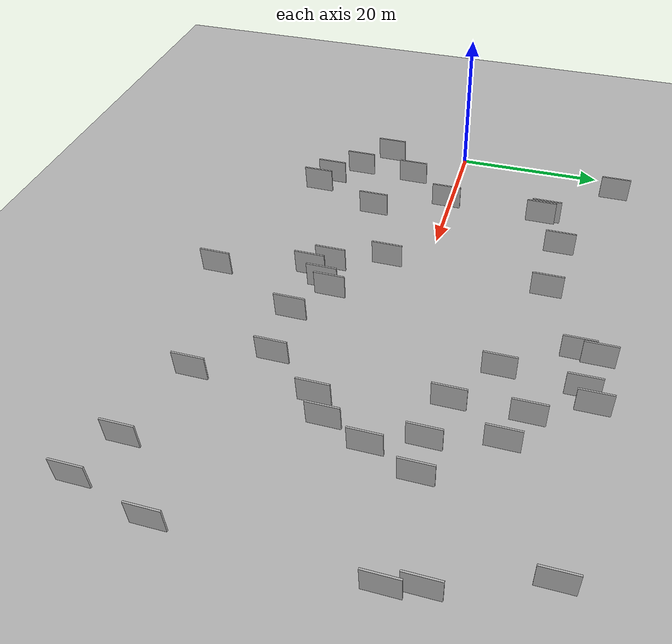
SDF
<?xml version="1.0" encoding="utf-8"?>

<sdf version="1.6">

   <world name="default">

      <gui fullscreen="0">

         <camera name="user_camera">

            <pose>-15 0 4.57585 0 0 0</pose>

            <view_controller>orbit</view_controller>

         </camera>

      </gui>

      <scene>

         <sky>

           <clouds>

             <speed>12</speed>

           </clouds>

         </sky>

         <ambient>0.4 0.4 0.4 1</ambient>

         <background>0.7 0.7 0.7 1</background>

         <shadows>1</shadows>

      </scene>

      <gravity>0 0 -9.8066</gravity>

      <magnetic_field>6e-06 2.3e-05 -4.2e-05</magnetic_field>

      <physics default="0" name="default_physics" type="ode">

         <ode>

            <solver>

               <type>quick</type>

               <iters>10</iters>

               <sor>1.0</sor>

               <use_dynamic_moi_rescaling>0</use_dynamic_moi_rescaling>

            </solver>

            <constraints>

               <cfm>0</cfm>

               <erp>0.2</erp>

               <contact_max_correcting_vel>100</contact_max_correcting_vel>

               <contact_surface_layer>0.001</contact_surface_layer>

            </constraints>

         </ode>

         <max_step_size>0.004</max_step_size>

         <real_time_factor>1</real_time_factor>

         <real_time_update_rate>250</real_time_update_rate>

      </physics>

      <light name="sun" type="directional">

         <cast_shadows>1</cast_shadows>

         <pose>0 0 10 0 0 0</pose>

         <diffuse>0.8 0.8 0.8 1</diffuse>

         <specular>0.2 0.2 0.2 1</specular>

         <attenuation>

            <range>1000</range>

            <constant>0.9</constant>

            <linear>0.01</linear>

            <quadratic>0.001</quadratic>

         </attenuation>

         <direction>-0.5 0.1 -0.9</direction>

      </light>

      <include>

         <name>ground_plane_1</name>

         <uri>model://HANNAS_ground_plane</uri>

         <pose>0 0 0  0 0 0</pose>

      </include>

      <include>

         <name>ground_plane_2</name>

         <uri>model://HANNAS_ground_plane</uri>

         <pose>100 0 0  0 0 0</pose>

      </include>

      <model name="HANNAS_wall_1">

         <static>1</static>

         <pose frame="">53.7140 -4.7588 0.0 0.000000 0.000000 1.570796</pose>

         <link name="link">

            <pose frame="">0 0 2.00 0 0 0</pose>

            <collision name="collision">

               <geometry>

                  <box>

                     <size>4.00 0.2 4.00</size>

                  </box>

               </geometry>

               <max_contacts>10</max_contacts>

               <surface>

                  <contact>

                     <ode/>

                  </contact>

                  <bounce/>

                  <friction>

                     <torsional>

                        <ode/>

                     </torsional>

                     <ode/>

                  </friction>

               </surface>

            </collision>

            <visual name="visual">

               <cast_shadows>0</cast_shadows>

               <geometry>

                  <box>

                     <size>4.00 0.2 4.00</size>

                  </box>

               </geometry>

               <material>

                  <script>

                     <uri>model://HANNAS_wall/materials/scripts</uri>

                     <uri>model://HANNAS_wall/materials/textures</uri>

                     <name>vrc/HANNAS_wall</name>

                  </script>

               </material>

            </visual>

            <self_collide>0</self_collide>

            <enable_wind>0</enable_wind>

            <kinematic>0</kinematic>

         </link>

      </model>

      <model name="HANNAS_wall_2">

         <static>1</static>

         <pose frame="">12.7586 13.1049 0.0 0.000000 0.000000 1.570796</pose>

         <link name="link">

            <pose frame="">0 0 2.00 0 0 0</pose>

            <collision name="collision">

               <geometry>

                  <box>

                     <size>4.00 0.2 4.00</size>

                  </box>

               </geometry>

               <max_contacts>10</max_contacts>

               <surface>

                  <contact>

                     <ode/>

                  </contact>

                  <bounce/>

                  <friction>

                     <torsional>

                        <ode/>

                     </torsional>

                     <ode/>

                  </friction>

               </surface>

            </collision>

            <visual name="visual">

               <cast_shadows>0</cast_shadows>

               <geometry>

                  <box>

                     <size>4.00 0.2 4.00</size>

                  </box>

               </geometry>

               <material>

                  <script>

                     <uri>model://HANNAS_wall/materials/scripts</uri>

                     <uri>model://HANNAS_wall/materials/textures</uri>

                     <name>vrc/HANNAS_wall</name>

                  </script>

               </material>

            </visual>

            <self_collide>0</self_collide>

            <enable_wind>0</enable_wind>

            <kinematic>0</kinematic>

         </link>

      </model>

      <model name="HANNAS_wall_3">

         <static>1</static>

         <pose frame="">47.8566 7.5863 0.0 0.000000 0.000000 1.570796</pose>

         <link name="link">

            <pose frame="">0 0 2.00 0 0 0</pose>

            <collision name="collision">

               <geometry>

                  <box>

                     <size>4.00 0.2 4.00</size>

                  </box>

               </geometry>

               <max_contacts>10</max_contacts>

               <surface>

                  <contact>

                     <ode/>

                  </contact>

                  <bounce/>

                  <friction>

                     <torsional>

                        <ode/>

                     </torsional>

                     <ode/>

                  </friction>

               </surface>

            </collision>

            <visual name="visual">

               <cast_shadows>0</cast_shadows>

               <geometry>

                  <box>

                     <size>4.00 0.2 4.00</size>

                  </box>

               </geometry>

               <material>

                  <script>

                     <uri>model://HANNAS_wall/materials/scripts</uri>

                     <uri>model://HANNAS_wall/materials/textures</uri>

                     <name>vrc/HANNAS_wall</name>

                  </script>

               </material>

            </visual>

            <self_collide>0</self_collide>

            <enable_wind>0</enable_wind>

            <kinematic>0</kinematic>

         </link>

      </model>

      <model name="HANNAS_wall_4">

         <static>1</static>

         <pose frame="">39.3707 -13.8842 0.0 0.000000 0.000000 1.570796</pose>

         <link name="link">

            <pose frame="">0 0 2.00 0 0 0</pose>

            <collision name="collision">

               <geometry>

                  <box>

                     <size>4.00 0.2 4.00</size>

                  </box>

               </geometry>

               <max_contacts>10</max_contacts>

               <surface>

                  <contact>

                     <ode/>

                  </contact>

                  <bounce/>

                  <friction>

                     <torsional>

                        <ode/>

                     </torsional>

                     <ode/>

                  </friction>

               </surface>

            </collision>

            <visual name="visual">

               <cast_shadows>0</cast_shadows>

               <geometry>

                  <box>

                     <size>4.00 0.2 4.00</size>

                  </box>

               </geometry>

               <material>

                  <script>

                     <uri>model://HANNAS_wall/materials/scripts</uri>

                     <uri>model://HANNAS_wall/materials/textures</uri>

                     <name>vrc/HANNAS_wall</name>

                  </script>

               </material>

            </visual>

            <self_collide>0</self_collide>

            <enable_wind>0</enable_wind>

            <kinematic>0</kinematic>

         </link>

      </model>

      <model name="HANNAS_wall_5">

         <static>1</static>

         <pose frame="">7.9513 -6.3178 0.0 0.000000 0.000000 1.570796</pose>

         <link name="link">

            <pose frame="">0 0 2.00 0 0 0</pose>

            <collision name="collision">

               <geometry>

                  <box>

                     <size>4.00 0.2 4.00</size>

                  </box>

               </geometry>

               <max_contacts>10</max_contacts>

               <surface>

                  <contact>

                     <ode/>

                  </contact>

                  <bounce/>

                  <friction>

                     <torsional>

                        <ode/>

                     </torsional>

                     <ode/>

                  </friction>

               </surface>

            </collision>

            <visual name="visual">

               <cast_shadows>0</cast_shadows>

               <geometry>

                  <box>

                     <size>4.00 0.2 4.00</size>

                  </box>

               </geometry>

               <material>

                  <script>

                     <uri>model://HANNAS_wall/materials/scripts</uri>

                     <uri>model://HANNAS_wall/materials/textures</uri>

                     <name>vrc/HANNAS_wall</name>

                  </script>

               </material>

            </visual>

            <self_collide>0</self_collide>

            <enable_wind>0</enable_wind>

            <kinematic>0</kinematic>

         </link>

      </model>

      <model name="HANNAS_wall_6">

         <static>1</static>

         <pose frame="">66.9631 -26.6463 0.0 0.000000 0.000000 1.570796</pose>

         <link name="link">

            <pose frame="">0 0 2.00 0 0 0</pose>

            <collision name="collision">

               <geometry>

                  <box>

                     <size>4.00 0.2 4.00</size>

                  </box>

               </geometry>

               <max_contacts>10</max_contacts>

               <surface>

                  <contact>

                     <ode/>

                  </contact>

                  <bounce/>

                  <friction>

                     <torsional>

                        <ode/>

                     </torsional>

                     <ode/>

                  </friction>

               </surface>

            </collision>

            <visual name="visual">

               <cast_shadows>0</cast_shadows>

               <geometry>

                  <box>

                     <size>4.00 0.2 4.00</size>

                  </box>

               </geometry>

               <material>

                  <script>

                     <uri>model://HANNAS_wall/materials/scripts</uri>

                     <uri>model://HANNAS_wall/materials/textures</uri>

                     <name>vrc/HANNAS_wall</name>

                  </script>

               </material>

            </visual>

            <self_collide>0</self_collide>

            <enable_wind>0</enable_wind>

            <kinematic>0</kinematic>

         </link>

      </model>

      <model name="HANNAS_wall_7">

         <static>1</static>

         <pose frame="">42.6201 21.5250 0.0 0.000000 0.000000 1.570796</pose>

         <link name="link">

            <pose frame="">0 0 2.00 0 0 0</pose>

            <collision name="collision">

               <geometry>

                  <box>

                     <size>4.00 0.2 4.00</size>

                  </box>

               </geometry>

               <max_contacts>10</max_contacts>

               <surface>

                  <contact>

                     <ode/>

                  </contact>

                  <bounce/>

                  <friction>

                     <torsional>

                        <ode/>

                     </torsional>

                     <ode/>

                  </friction>

               </surface>

            </collision>

            <visual name="visual">

               <cast_shadows>0</cast_shadows>

               <geometry>

                  <box>

                     <size>4.00 0.2 4.00</size>

                  </box>

               </geometry>

               <material>

                  <script>

                     <uri>model://HANNAS_wall/materials/scripts</uri>

                     <uri>model://HANNAS_wall/materials/textures</uri>

                     <name>vrc/HANNAS_wall</name>

                  </script>

               </material>

            </visual>

            <self_collide>0</self_collide>

            <enable_wind>0</enable_wind>

            <kinematic>0</kinematic>

         </link>

      </model>

      <model name="HANNAS_wall_8">

         <static>1</static>

         <pose frame="">41.9875 12.1137 0.0 0.000000 0.000000 1.570796</pose>

         <link name="link">

            <pose frame="">0 0 2.00 0 0 0</pose>

            <collision name="collision">

               <geometry>

                  <box>

                     <size>4.00 0.2 4.00</size>

                  </box>

               </geometry>

               <max_contacts>10</max_contacts>

               <surface>

                  <contact>

                     <ode/>

                  </contact>

                  <bounce/>

                  <friction>

                     <torsional>

                        <ode/>

                     </torsional>

                     <ode/>

                  </friction>

               </surface>

            </collision>

            <visual name="visual">

               <cast_shadows>0</cast_shadows>

               <geometry>

                  <box>

                     <size>4.00 0.2 4.00</size>

                  </box>

               </geometry>

               <material>

                  <script>

                     <uri>model://HANNAS_wall/materials/scripts</uri>

                     <uri>model://HANNAS_wall/materials/textures</uri>

                     <name>vrc/HANNAS_wall</name>

                  </script>

               </material>

            </visual>

            <self_collide>0</self_collide>

            <enable_wind>0</enable_wind>

            <kinematic>0</kinematic>

         </link>

      </model>

      <model name="HANNAS_wall_9">

         <static>1</static>

         <pose frame="">51.0107 -6.7677 0.0 0.000000 0.000000 1.570796</pose>

         <link name="link">

            <pose frame="">0 0 2.00 0 0 0</pose>

            <collision name="collision">

               <geometry>

                  <box>

                     <size>4.00 0.2 4.00</size>

                  </box>

               </geometry>

               <max_contacts>10</max_contacts>

               <surface>

                  <contact>

                     <ode/>

                  </contact>

                  <bounce/>

                  <friction>

                     <torsional>

                        <ode/>

                     </torsional>

                     <ode/>

                  </friction>

               </surface>

            </collision>

            <visual name="visual">

               <cast_shadows>0</cast_shadows>

               <geometry>

                  <box>

                     <size>4.00 0.2 4.00</size>

                  </box>

               </geometry>

               <material>

                  <script>

                     <uri>model://HANNAS_wall/materials/scripts</uri>

                     <uri>model://HANNAS_wall/materials/textures</uri>

                     <name>vrc/HANNAS_wall</name>

                  </script>

               </material>

            </visual>

            <self_collide>0</self_collide>

            <enable_wind>0</enable_wind>

            <kinematic>0</kinematic>

         </link>

      </model>

      <model name="HANNAS_wall_10">

         <static>1</static>

         <pose frame="">13.3359 -19.1799 0.0 0.000000 0.000000 1.570796</pose>

         <link name="link">

            <pose frame="">0 0 2.00 0 0 0</pose>

            <collision name="collision">

               <geometry>

                  <box>

                     <size>4.00 0.2 4.00</size>

                  </box>

               </geometry>

               <max_contacts>10</max_contacts>

               <surface>

                  <contact>

                     <ode/>

                  </contact>

                  <bounce/>

                  <friction>

                     <torsional>

                        <ode/>

                     </torsional>

                     <ode/>

                  </friction>

               </surface>

            </collision>

            <visual name="visual">

               <cast_shadows>0</cast_shadows>

               <geometry>

                  <box>

                     <size>4.00 0.2 4.00</size>

                  </box>

               </geometry>

               <material>

                  <script>

                     <uri>model://HANNAS_wall/materials/scripts</uri>

                     <uri>model://HANNAS_wall/materials/textures</uri>

                     <name>vrc/HANNAS_wall</name>

                  </script>

               </material>

            </visual>

            <self_collide>0</self_collide>

            <enable_wind>0</enable_wind>

            <kinematic>0</kinematic>

         </link>

      </model>

      <model name="HANNAS_wall_11">

         <static>1</static>

         <pose frame="">33.9916 -26.0391 0.0 0.000000 0.000000 1.570796</pose>

         <link name="link">

            <pose frame="">0 0 2.00 0 0 0</pose>

            <collision name="collision">

               <geometry>

                  <box>

                     <size>4.00 0.2 4.00</size>

                  </box>

               </geometry>

               <max_contacts>10</max_contacts>

               <surface>

                  <contact>

                     <ode/>

                  </contact>

                  <bounce/>

                  <friction>

                     <torsional>

                        <ode/>

                     </torsional>

                     <ode/>

                  </friction>

               </surface>

            </collision>

            <visual name="visual">

               <cast_shadows>0</cast_shadows>

               <geometry>

                  <box>

                     <size>4.00 0.2 4.00</size>

                  </box>

               </geometry>

               <material>

                  <script>

                     <uri>model://HANNAS_wall/materials/scripts</uri>

                     <uri>model://HANNAS_wall/materials/textures</uri>

                     <name>vrc/HANNAS_wall</name>

                  </script>

               </material>

            </visual>

            <self_collide>0</self_collide>

            <enable_wind>0</enable_wind>

            <kinematic>0</kinematic>

         </link>

      </model>

      <model name="HANNAS_wall_12">

         <static>1</static>

         <pose frame="">51.6751 14.1049 0.0 0.000000 0.000000 1.570796</pose>

         <link name="link">

            <pose frame="">0 0 2.00 0 0 0</pose>

            <collision name="collision">

               <geometry>

                  <box>

                     <size>4.00 0.2 4.00</size>

                  </box>

               </geometry>

               <max_contacts>10</max_contacts>

               <surface>

                  <contact>

                     <ode/>

                  </contact>

                  <bounce/>

                  <friction>

                     <torsional>

                        <ode/>

                     </torsional>

                     <ode/>

                  </friction>

               </surface>

            </collision>

            <visual name="visual">

               <cast_shadows>0</cast_shadows>

               <geometry>

                  <box>

                     <size>4.00 0.2 4.00</size>

                  </box>

               </geometry>

               <material>

                  <script>

                     <uri>model://HANNAS_wall/materials/scripts</uri>

                     <uri>model://HANNAS_wall/materials/textures</uri>

                     <name>vrc/HANNAS_wall</name>

                  </script>

               </material>

            </visual>

            <self_collide>0</self_collide>

            <enable_wind>0</enable_wind>

            <kinematic>0</kinematic>

         </link>

      </model>

      <model name="HANNAS_wall_13">

         <static>1</static>

         <pose frame="">33.1895 -11.9357 0.0 0.000000 0.000000 1.570796</pose>

         <link name="link">

            <pose frame="">0 0 2.00 0 0 0</pose>

            <collision name="collision">

               <geometry>

                  <box>

                     <size>4.00 0.2 4.00</size>

                  </box>

               </geometry>

               <max_contacts>10</max_contacts>

               <surface>

                  <contact>

                     <ode/>

                  </contact>

                  <bounce/>

                  <friction>

                     <torsional>

                        <ode/>

                     </torsional>

                     <ode/>

                  </friction>

               </surface>

            </collision>

            <visual name="visual">

               <cast_shadows>0</cast_shadows>

               <geometry>

                  <box>

                     <size>4.00 0.2 4.00</size>

                  </box>

               </geometry>

               <material>

                  <script>

                     <uri>model://HANNAS_wall/materials/scripts</uri>

                     <uri>model://HANNAS_wall/materials/textures</uri>

                     <name>vrc/HANNAS_wall</name>

                  </script>

               </material>

            </visual>

            <self_collide>0</self_collide>

            <enable_wind>0</enable_wind>

            <kinematic>0</kinematic>

         </link>

      </model>

      <model name="HANNAS_wall_14">

         <static>1</static>

         <pose frame="">12.5360 -0.3526 0.0 0.000000 0.000000 1.570796</pose>

         <link name="link">

            <pose frame="">0 0 2.00 0 0 0</pose>

            <collision name="collision">

               <geometry>

                  <box>

                     <size>4.00 0.2 4.00</size>

                  </box>

               </geometry>

               <max_contacts>10</max_contacts>

               <surface>

                  <contact>

                     <ode/>

                  </contact>

                  <bounce/>

                  <friction>

                     <torsional>

                        <ode/>

                     </torsional>

                     <ode/>

                  </friction>

               </surface>

            </collision>

            <visual name="visual">

               <cast_shadows>0</cast_shadows>

               <geometry>

                  <box>

                     <size>4.00 0.2 4.00</size>

                  </box>

               </geometry>

               <material>

                  <script>

                     <uri>model://HANNAS_wall/materials/scripts</uri>

                     <uri>model://HANNAS_wall/materials/textures</uri>

                     <name>vrc/HANNAS_wall</name>

                  </script>

               </material>

            </visual>

            <self_collide>0</self_collide>

            <enable_wind>0</enable_wind>

            <kinematic>0</kinematic>

         </link>

      </model>

      <model name="HANNAS_wall_15">

         <static>1</static>

         <pose frame="">27.4624 15.7291 0.0 0.000000 0.000000 1.570796</pose>

         <link name="link">

            <pose frame="">0 0 2.00 0 0 0</pose>

            <collision name="collision">

               <geometry>

                  <box>

                     <size>4.00 0.2 4.00</size>

                  </box>

               </geometry>

               <max_contacts>10</max_contacts>

               <surface>

                  <contact>

                     <ode/>

                  </contact>

                  <bounce/>

                  <friction>

                     <torsional>

                        <ode/>

                     </torsional>

                     <ode/>

                  </friction>

               </surface>

            </collision>

            <visual name="visual">

               <cast_shadows>0</cast_shadows>

               <geometry>

                  <box>

                     <size>4.00 0.2 4.00</size>

                  </box>

               </geometry>

               <material>

                  <script>

                     <uri>model://HANNAS_wall/materials/scripts</uri>

                     <uri>model://HANNAS_wall/materials/textures</uri>

                     <name>vrc/HANNAS_wall</name>

                  </script>

               </material>

            </visual>

            <self_collide>0</self_collide>

            <enable_wind>0</enable_wind>

            <kinematic>0</kinematic>

         </link>

      </model>

      <model name="HANNAS_wall_16">

         <static>1</static>

         <pose frame="">12.3414 13.7990 0.0 0.000000 0.000000 1.570796</pose>

         <link name="link">

            <pose frame="">0 0 2.00 0 0 0</pose>

            <collision name="collision">

               <geometry>

                  <box>

                     <size>4.00 0.2 4.00</size>

                  </box>

               </geometry>

               <max_contacts>10</max_contacts>

               <surface>

                  <contact>

                     <ode/>

                  </contact>

                  <bounce/>

                  <friction>

                     <torsional>

                        <ode/>

                     </torsional>

                     <ode/>

                  </friction>

               </surface>

            </collision>

            <visual name="visual">

               <cast_shadows>0</cast_shadows>

               <geometry>

                  <box>

                     <size>4.00 0.2 4.00</size>

                  </box>

               </geometry>

               <material>

                  <script>

                     <uri>model://HANNAS_wall/materials/scripts</uri>

                     <uri>model://HANNAS_wall/materials/textures</uri>

                     <name>vrc/HANNAS_wall</name>

                  </script>

               </material>

            </visual>

            <self_collide>0</self_collide>

            <enable_wind>0</enable_wind>

            <kinematic>0</kinematic>

         </link>

      </model>

      <model name="HANNAS_wall_17">

         <static>1</static>

         <pose frame="">44.5804 22.8343 0.0 0.000000 0.000000 1.570796</pose>

         <link name="link">

            <pose frame="">0 0 2.00 0 0 0</pose>

            <collision name="collision">

               <geometry>

                  <box>

                     <size>4.00 0.2 4.00</size>

                  </box>

               </geometry>

               <max_contacts>10</max_contacts>

               <surface>

                  <contact>

                     <ode/>

                  </contact>

                  <bounce/>

                  <friction>

                     <torsional>

                        <ode/>

                     </torsional>

                     <ode/>

                  </friction>

               </surface>

            </collision>

            <visual name="visual">

               <cast_shadows>0</cast_shadows>

               <geometry>

                  <box>

                     <size>4.00 0.2 4.00</size>

                  </box>

               </geometry>

               <material>

                  <script>

                     <uri>model://HANNAS_wall/materials/scripts</uri>

                     <uri>model://HANNAS_wall/materials/textures</uri>

                     <name>vrc/HANNAS_wall</name>

                  </script>

               </material>

            </visual>

            <self_collide>0</self_collide>

            <enable_wind>0</enable_wind>

            <kinematic>0</kinematic>

         </link>

      </model>

      <model name="HANNAS_wall_18">

         <static>1</static>

         <pose frame="">51.0978 -21.4170 0.0 0.000000 0.000000 1.570796</pose>

         <link name="link">

            <pose frame="">0 0 2.00 0 0 0</pose>

            <collision name="collision">

               <geometry>

                  <box>

                     <size>4.00 0.2 4.00</size>

                  </box>

               </geometry>

               <max_contacts>10</max_contacts>

               <surface>

                  <contact>

                     <ode/>

                  </contact>

                  <bounce/>

                  <friction>

                     <torsional>

                        <ode/>

                     </torsional>

                     <ode/>

                  </friction>

               </surface>

            </collision>

            <visual name="visual">

               <cast_shadows>0</cast_shadows>

               <geometry>

                  <box>

                     <size>4.00 0.2 4.00</size>

                  </box>

               </geometry>

               <material>

                  <script>

                     <uri>model://HANNAS_wall/materials/scripts</uri>

                     <uri>model://HANNAS_wall/materials/textures</uri>

                     <name>vrc/HANNAS_wall</name>

                  </script>

               </material>

            </visual>

            <self_collide>0</self_collide>

            <enable_wind>0</enable_wind>

            <kinematic>0</kinematic>

         </link>

      </model>

      <model name="HANNAS_wall_19">

         <static>1</static>

         <pose frame="">61.3353 -24.3064 0.0 0.000000 0.000000 1.570796</pose>

         <link name="link">

            <pose frame="">0 0 2.00 0 0 0</pose>

            <collision name="collision">

               <geometry>

                  <box>

                     <size>4.00 0.2 4.00</size>

                  </box>

               </geometry>

               <max_contacts>10</max_contacts>

               <surface>

                  <contact>

                     <ode/>

                  </contact>

                  <bounce/>

                  <friction>

                     <torsional>

                        <ode/>

                     </torsional>

                     <ode/>

                  </friction>

               </surface>

            </collision>

            <visual name="visual">

               <cast_shadows>0</cast_shadows>

               <geometry>

                  <box>

                     <size>4.00 0.2 4.00</size>

                  </box>

               </geometry>

               <material>

                  <script>

                     <uri>model://HANNAS_wall/materials/scripts</uri>

                     <uri>model://HANNAS_wall/materials/textures</uri>

                     <name>vrc/HANNAS_wall</name>

                  </script>

               </material>

            </visual>

            <self_collide>0</self_collide>

            <enable_wind>0</enable_wind>

            <kinematic>0</kinematic>

         </link>

      </model>

      <model name="HANNAS_wall_20">

         <static>1</static>

         <pose frame="">3.0902 -10.8267 0.0 0.000000 0.000000 1.570796</pose>

         <link name="link">

            <pose frame="">0 0 2.00 0 0 0</pose>

            <collision name="collision">

               <geometry>

                  <box>

                     <size>4.00 0.2 4.00</size>

                  </box>

               </geometry>

               <max_contacts>10</max_contacts>

               <surface>

                  <contact>

                     <ode/>

                  </contact>

                  <bounce/>

                  <friction>

                     <torsional>

                        <ode/>

                     </torsional>

                     <ode/>

                  </friction>

               </surface>

            </collision>

            <visual name="visual">

               <cast_shadows>0</cast_shadows>

               <geometry>

                  <box>

                     <size>4.00 0.2 4.00</size>

                  </box>

               </geometry>

               <material>

                  <script>

                     <uri>model://HANNAS_wall/materials/scripts</uri>

                     <uri>model://HANNAS_wall/materials/textures</uri>

                     <name>vrc/HANNAS_wall</name>

                  </script>

               </material>

            </visual>

            <self_collide>0</self_collide>

            <enable_wind>0</enable_wind>

            <kinematic>0</kinematic>

         </link>

      </model>

      <model name="HANNAS_wall_21">

         <static>1</static>

         <pose frame="">29.5535 -11.9886 0.0 0.000000 0.000000 1.570796</pose>

         <link name="link">

            <pose frame="">0 0 2.00 0 0 0</pose>

            <collision name="collision">

               <geometry>

                  <box>

                     <size>4.00 0.2 4.00</size>

                  </box>

               </geometry>

               <max_contacts>10</max_contacts>

               <surface>

                  <contact>

                     <ode/>

                  </contact>

                  <bounce/>

                  <friction>

                     <torsional>

                        <ode/>

                     </torsional>

                     <ode/>

                  </friction>

               </surface>

            </collision>

            <visual name="visual">

               <cast_shadows>0</cast_shadows>

               <geometry>

                  <box>

                     <size>4.00 0.2 4.00</size>

                  </box>

               </geometry>

               <material>

                  <script>

                     <uri>model://HANNAS_wall/materials/scripts</uri>

                     <uri>model://HANNAS_wall/materials/textures</uri>

                     <name>vrc/HANNAS_wall</name>

                  </script>

               </material>

            </visual>

            <self_collide>0</self_collide>

            <enable_wind>0</enable_wind>

            <kinematic>0</kinematic>

         </link>

      </model>

      <model name="HANNAS_wall_22">

         <static>1</static>

         <pose frame="">46.4866 -13.4271 0.0 0.000000 0.000000 1.570796</pose>

         <link name="link">

            <pose frame="">0 0 2.00 0 0 0</pose>

            <collision name="collision">

               <geometry>

                  <box>

                     <size>4.00 0.2 4.00</size>

                  </box>

               </geometry>

               <max_contacts>10</max_contacts>

               <surface>

                  <contact>

                     <ode/>

                  </contact>

                  <bounce/>

                  <friction>

                     <torsional>

                        <ode/>

                     </torsional>

                     <ode/>

                  </friction>

               </surface>

            </collision>

            <visual name="visual">

               <cast_shadows>0</cast_shadows>

               <geometry>

                  <box>

                     <size>4.00 0.2 4.00</size>

                  </box>

               </geometry>

               <material>

                  <script>

                     <uri>model://HANNAS_wall/materials/scripts</uri>

                     <uri>model://HANNAS_wall/materials/textures</uri>

                     <name>vrc/HANNAS_wall</name>

                  </script>

               </material>

            </visual>

            <self_collide>0</self_collide>

            <enable_wind>0</enable_wind>

            <kinematic>0</kinematic>

         </link>

      </model>

      <model name="HANNAS_wall_23">

         <static>1</static>

         <pose frame="">69.0649 9.6829 0.0 0.000000 0.000000 1.570796</pose>

         <link name="link">

            <pose frame="">0 0 2.00 0 0 0</pose>

            <collision name="collision">

               <geometry>

                  <box>

                     <size>4.00 0.2 4.00</size>

                  </box>

               </geometry>

               <max_contacts>10</max_contacts>

               <surface>

                  <contact>

                     <ode/>

                  </contact>

                  <bounce/>

                  <friction>

                     <torsional>

                        <ode/>

                     </torsional>

                     <ode/>

                  </friction>

               </surface>

            </collision>

            <visual name="visual">

               <cast_shadows>0</cast_shadows>

               <geometry>

                  <box>

                     <size>4.00 0.2 4.00</size>

                  </box>

               </geometry>

               <material>

                  <script>

                     <uri>model://HANNAS_wall/materials/scripts</uri>

                     <uri>model://HANNAS_wall/materials/textures</uri>

                     <name>vrc/HANNAS_wall</name>

                  </script>

               </material>

            </visual>

            <self_collide>0</self_collide>

            <enable_wind>0</enable_wind>

            <kinematic>0</kinematic>

         </link>

      </model>

      <model name="HANNAS_wall_24">

         <static>1</static>

         <pose frame="">47.7056 16.2039 0.0 0.000000 0.000000 1.570796</pose>

         <link name="link">

            <pose frame="">0 0 2.00 0 0 0</pose>

            <collision name="collision">

               <geometry>

                  <box>

                     <size>4.00 0.2 4.00</size>

                  </box>

               </geometry>

               <max_contacts>10</max_contacts>

               <surface>

                  <contact>

                     <ode/>

                  </contact>

                  <bounce/>

                  <friction>

                     <torsional>

                        <ode/>

                     </torsional>

                     <ode/>

                  </friction>

               </surface>

            </collision>

            <visual name="visual">

               <cast_shadows>0</cast_shadows>

               <geometry>

                  <box>

                     <size>4.00 0.2 4.00</size>

                  </box>

               </geometry>

               <material>

                  <script>

                     <uri>model://HANNAS_wall/materials/scripts</uri>

                     <uri>model://HANNAS_wall/materials/textures</uri>

                     <name>vrc/HANNAS_wall</name>

                  </script>

               </material>

            </visual>

            <self_collide>0</self_collide>

            <enable_wind>0</enable_wind>

            <kinematic>0</kinematic>

         </link>

      </model>

      <model name="HANNAS_wall_25">

         <static>1</static>

         <pose frame="">7.6501 -14.3782 0.0 0.000000 0.000000 1.570796</pose>

         <link name="link">

            <pose frame="">0 0 2.00 0 0 0</pose>

            <collision name="collision">

               <geometry>

                  <box>

                     <size>4.00 0.2 4.00</size>

                  </box>

               </geometry>

               <max_contacts>10</max_contacts>

               <surface>

                  <contact>

                     <ode/>

                  </contact>

                  <bounce/>

                  <friction>

                     <torsional>

                        <ode/>

                     </torsional>

                     <ode/>

                  </friction>

               </surface>

            </collision>

            <visual name="visual">

               <cast_shadows>0</cast_shadows>

               <geometry>

                  <box>

                     <size>4.00 0.2 4.00</size>

                  </box>

               </geometry>

               <material>

                  <script>

                     <uri>model://HANNAS_wall/materials/scripts</uri>

                     <uri>model://HANNAS_wall/materials/textures</uri>

                     <name>vrc/HANNAS_wall</name>

                  </script>

               </material>

            </visual>

            <self_collide>0</self_collide>

            <enable_wind>0</enable_wind>

            <kinematic>0</kinematic>

         </link>

      </model>

      <model name="HANNAS_wall_26">

         <static>1</static>

         <pose frame="">37.1614 20.4807 0.0 0.000000 0.000000 1.570796</pose>

         <link name="link">

            <pose frame="">0 0 2.00 0 0 0</pose>

            <collision name="collision">

               <geometry>

                  <box>

                     <size>4.00 0.2 4.00</size>

                  </box>

               </geometry>

               <max_contacts>10</max_contacts>

               <surface>

                  <contact>

                     <ode/>

                  </contact>

                  <bounce/>

                  <friction>

                     <torsional>

                        <ode/>

                     </torsional>

                     <ode/>

                  </friction>

               </surface>

            </collision>

            <visual name="visual">

               <cast_shadows>0</cast_shadows>

               <geometry>

                  <box>

                     <size>4.00 0.2 4.00</size>

                  </box>

               </geometry>

               <material>

                  <script>

                     <uri>model://HANNAS_wall/materials/scripts</uri>

                     <uri>model://HANNAS_wall/materials/textures</uri>

                     <name>vrc/HANNAS_wall</name>

                  </script>

               </material>

            </visual>

            <self_collide>0</self_collide>

            <enable_wind>0</enable_wind>

            <kinematic>0</kinematic>

         </link>

      </model>

      <model name="HANNAS_wall_27">

         <static>1</static>

         <pose frame="">69.8252 6.1507 0.0 0.000000 0.000000 1.570796</pose>

         <link name="link">

            <pose frame="">0 0 2.00 0 0 0</pose>

            <collision name="collision">

               <geometry>

                  <box>

                     <size>4.00 0.2 4.00</size>

                  </box>

               </geometry>

               <max_contacts>10</max_contacts>

               <surface>

                  <contact>

                     <ode/>

                  </contact>

                  <bounce/>

                  <friction>

                     <torsional>

                        <ode/>

                     </torsional>

                     <ode/>

                  </friction>

               </surface>

            </collision>

            <visual name="visual">

               <cast_shadows>0</cast_shadows>

               <geometry>

                  <box>

                     <size>4.00 0.2 4.00</size>

                  </box>

               </geometry>

               <material>

                  <script>

                     <uri>model://HANNAS_wall/materials/scripts</uri>

                     <uri>model://HANNAS_wall/materials/textures</uri>

                     <name>vrc/HANNAS_wall</name>

                  </script>

               </material>

            </visual>

            <self_collide>0</self_collide>

            <enable_wind>0</enable_wind>

            <kinematic>0</kinematic>

         </link>

      </model>

      <model name="HANNAS_wall_28">

         <static>1</static>

         <pose frame="">4.5530 22.7155 0.0 0.000000 0.000000 1.570796</pose>

         <link name="link">

            <pose frame="">0 0 2.00 0 0 0</pose>

            <collision name="collision">

               <geometry>

                  <box>

                     <size>4.00 0.2 4.00</size>

                  </box>

               </geometry>

               <max_contacts>10</max_contacts>

               <surface>

                  <contact>

                     <ode/>

                  </contact>

                  <bounce/>

                  <friction>

                     <torsional>

                        <ode/>

                     </torsional>

                     <ode/>

                  </friction>

               </surface>

            </collision>

            <visual name="visual">

               <cast_shadows>0</cast_shadows>

               <geometry>

                  <box>

                     <size>4.00 0.2 4.00</size>

                  </box>

               </geometry>

               <material>

                  <script>

                     <uri>model://HANNAS_wall/materials/scripts</uri>

                     <uri>model://HANNAS_wall/materials/textures</uri>

                     <name>vrc/HANNAS_wall</name>

                  </script>

               </material>

            </visual>

            <self_collide>0</self_collide>

            <enable_wind>0</enable_wind>

            <kinematic>0</kinematic>

         </link>

      </model>

      <model name="HANNAS_wall_29">

         <static>1</static>

         <pose frame="">55.7542 0.4789 0.0 0.000000 0.000000 1.570796</pose>

         <link name="link">

            <pose frame="">0 0 2.00 0 0 0</pose>

            <collision name="collision">

               <geometry>

                  <box>

                     <size>4.00 0.2 4.00</size>

                  </box>

               </geometry>

               <max_contacts>10</max_contacts>

               <surface>

                  <contact>

                     <ode/>

                  </contact>

                  <bounce/>

                  <friction>

                     <torsional>

                        <ode/>

                     </torsional>

                     <ode/>

                  </friction>

               </surface>

            </collision>

            <visual name="visual">

               <cast_shadows>0</cast_shadows>

               <geometry>

                  <box>

                     <size>4.00 0.2 4.00</size>

                  </box>

               </geometry>

               <material>

                  <script>

                     <uri>model://HANNAS_wall/materials/scripts</uri>

                     <uri>model://HANNAS_wall/materials/textures</uri>

                     <name>vrc/HANNAS_wall</name>

                  </script>

               </material>

            </visual>

            <self_collide>0</self_collide>

            <enable_wind>0</enable_wind>

            <kinematic>0</kinematic>

         </link>

      </model>

      <model name="HANNAS_wall_30">

         <static>1</static>

         <pose frame="">53.5593 6.2164 0.0 0.000000 0.000000 1.570796</pose>

         <link name="link">

            <pose frame="">0 0 2.00 0 0 0</pose>

            <collision name="collision">

               <geometry>

                  <box>

                     <size>4.00 0.2 4.00</size>

                  </box>

               </geometry>

               <max_contacts>10</max_contacts>

               <surface>

                  <contact>

                     <ode/>

                  </contact>

                  <bounce/>

                  <friction>

                     <torsional>

                        <ode/>

                     </torsional>

                     <ode/>

                  </friction>

               </surface>

            </collision>

            <visual name="visual">

               <cast_shadows>0</cast_shadows>

               <geometry>

                  <box>

                     <size>4.00 0.2 4.00</size>

                  </box>

               </geometry>

               <material>

                  <script>

                     <uri>model://HANNAS_wall/materials/scripts</uri>

                     <uri>model://HANNAS_wall/materials/textures</uri>

                     <name>vrc/HANNAS_wall</name>

                  </script>

               </material>

            </visual>

            <self_collide>0</self_collide>

            <enable_wind>0</enable_wind>

            <kinematic>0</kinematic>

         </link>

      </model>

      <model name="HANNAS_wall_31">

         <static>1</static>

         <pose frame="">31.2842 -14.1912 0.0 0.000000 0.000000 1.570796</pose>

         <link name="link">

            <pose frame="">0 0 2.00 0 0 0</pose>

            <collision name="collision">

               <geometry>

                  <box>

                     <size>4.00 0.2 4.00</size>

                  </box>

               </geometry>

               <max_contacts>10</max_contacts>

               <surface>

                  <contact>

                     <ode/>

                  </contact>

                  <bounce/>

                  <friction>

                     <torsional>

                        <ode/>

                     </torsional>

                     <ode/>

                  </friction>

               </surface>

            </collision>

            <visual name="visual">

               <cast_shadows>0</cast_shadows>

               <geometry>

                  <box>

                     <size>4.00 0.2 4.00</size>

                  </box>

               </geometry>

               <material>

                  <script>

                     <uri>model://HANNAS_wall/materials/scripts</uri>

                     <uri>model://HANNAS_wall/materials/textures</uri>

                     <name>vrc/HANNAS_wall</name>

                  </script>

               </material>

            </visual>

            <self_collide>0</self_collide>

            <enable_wind>0</enable_wind>

            <kinematic>0</kinematic>

         </link>

      </model>

      <model name="HANNAS_wall_32">

         <static>1</static>

         <pose frame="">16.8226 -9.8832 0.0 0.000000 0.000000 1.570796</pose>

         <link name="link">

            <pose frame="">0 0 2.00 0 0 0</pose>

            <collision name="collision">

               <geometry>

                  <box>

                     <size>4.00 0.2 4.00</size>

                  </box>

               </geometry>

               <max_contacts>10</max_contacts>

               <surface>

                  <contact>

                     <ode/>

                  </contact>

                  <bounce/>

                  <friction>

                     <torsional>

                        <ode/>

                     </torsional>

                     <ode/>

                  </friction>

               </surface>

            </collision>

            <visual name="visual">

               <cast_shadows>0</cast_shadows>

               <geometry>

                  <box>

                     <size>4.00 0.2 4.00</size>

                  </box>

               </geometry>

               <material>

                  <script>

                     <uri>model://HANNAS_wall/materials/scripts</uri>

                     <uri>model://HANNAS_wall/materials/textures</uri>

                     <name>vrc/HANNAS_wall</name>

                  </script>

               </material>

            </visual>

            <self_collide>0</self_collide>

            <enable_wind>0</enable_wind>

            <kinematic>0</kinematic>

         </link>

      </model>

      <model name="HANNAS_wall_33">

         <static>1</static>

         <pose frame="">26.9075 -5.1520 0.0 0.000000 0.000000 1.570796</pose>

         <link name="link">

            <pose frame="">0 0 2.00 0 0 0</pose>

            <collision name="collision">

               <geometry>

                  <box>

                     <size>4.00 0.2 4.00</size>

                  </box>

               </geometry>

               <max_contacts>10</max_contacts>

               <surface>

                  <contact>

                     <ode/>

                  </contact>

                  <bounce/>

                  <friction>

                     <torsional>

                        <ode/>

                     </torsional>

                     <ode/>

                  </friction>

               </surface>

            </collision>

            <visual name="visual">

               <cast_shadows>0</cast_shadows>

               <geometry>

                  <box>

                     <size>4.00 0.2 4.00</size>

                  </box>

               </geometry>

               <material>

                  <script>

                     <uri>model://HANNAS_wall/materials/scripts</uri>

                     <uri>model://HANNAS_wall/materials/textures</uri>

                     <name>vrc/HANNAS_wall</name>

                  </script>

               </material>

            </visual>

            <self_collide>0</self_collide>

            <enable_wind>0</enable_wind>

            <kinematic>0</kinematic>

         </link>

      </model>

      <model name="HANNAS_wall_34">

         <static>1</static>

         <pose frame="">37.4651 22.8925 0.0 0.000000 0.000000 1.570796</pose>

         <link name="link">

            <pose frame="">0 0 2.00 0 0 0</pose>

            <collision name="collision">

               <geometry>

                  <box>

                     <size>4.00 0.2 4.00</size>

                  </box>

               </geometry>

               <max_contacts>10</max_contacts>

               <surface>

                  <contact>

                     <ode/>

                  </contact>

                  <bounce/>

                  <friction>

                     <torsional>

                        <ode/>

                     </torsional>

                     <ode/>

                  </friction>

               </surface>

            </collision>

            <visual name="visual">

               <cast_shadows>0</cast_shadows>

               <geometry>

                  <box>

                     <size>4.00 0.2 4.00</size>

                  </box>

               </geometry>

               <material>

                  <script>

                     <uri>model://HANNAS_wall/materials/scripts</uri>

                     <uri>model://HANNAS_wall/materials/textures</uri>

                     <name>vrc/HANNAS_wall</name>

                  </script>

               </material>

            </visual>

            <self_collide>0</self_collide>

            <enable_wind>0</enable_wind>

            <kinematic>0</kinematic>

         </link>

      </model>

      <model name="HANNAS_wall_35">

         <static>1</static>

         <pose frame="">10.8350 -17.9179 0.0 0.000000 0.000000 1.570796</pose>

         <link name="link">

            <pose frame="">0 0 2.00 0 0 0</pose>

            <collision name="collision">

               <geometry>

                  <box>

                     <size>4.00 0.2 4.00</size>

                  </box>

               </geometry>

               <max_contacts>10</max_contacts>

               <surface>

                  <contact>

                     <ode/>

                  </contact>

                  <bounce/>

                  <friction>

                     <torsional>

                        <ode/>

                     </torsional>

                     <ode/>

                  </friction>

               </surface>

            </collision>

            <visual name="visual">

               <cast_shadows>0</cast_shadows>

               <geometry>

                  <box>

                     <size>4.00 0.2 4.00</size>

                  </box>

               </geometry>

               <material>

                  <script>

                     <uri>model://HANNAS_wall/materials/scripts</uri>

                     <uri>model://HANNAS_wall/materials/textures</uri>

                     <name>vrc/HANNAS_wall</name>

                  </script>

               </material>

            </visual>

            <self_collide>0</self_collide>

            <enable_wind>0</enable_wind>

            <kinematic>0</kinematic>

         </link>

      </model>

      <model name="HANNAS_wall_36">

         <static>1</static>

         <pose frame="">34.4307 -10.5201 0.0 0.000000 0.000000 1.570796</pose>

         <link name="link">

            <pose frame="">0 0 2.00 0 0 0</pose>

            <collision name="collision">

               <geometry>

                  <box>

                     <size>4.00 0.2 4.00</size>

                  </box>

               </geometry>

               <max_contacts>10</max_contacts>

               <surface>

                  <contact>

                     <ode/>

                  </contact>

                  <bounce/>

                  <friction>

                     <torsional>

                        <ode/>

                     </torsional>

                     <ode/>

                  </friction>

               </surface>

            </collision>

            <visual name="visual">

               <cast_shadows>0</cast_shadows>

               <geometry>

                  <box>

                     <size>4.00 0.2 4.00</size>

                  </box>

               </geometry>

               <material>

                  <script>

                     <uri>model://HANNAS_wall/materials/scripts</uri>

                     <uri>model://HANNAS_wall/materials/textures</uri>

                     <name>vrc/HANNAS_wall</name>

                  </script>

               </material>

            </visual>

            <self_collide>0</self_collide>

            <enable_wind>0</enable_wind>

            <kinematic>0</kinematic>

         </link>

      </model>

      <model name="HANNAS_wall_37">

         <static>1</static>

         <pose frame="">65.4412 21.1544 0.0 0.000000 0.000000 1.570796</pose>

         <link name="link">

            <pose frame="">0 0 2.00 0 0 0</pose>

            <collision name="collision">

               <geometry>

                  <box>

                     <size>4.00 0.2 4.00</size>

                  </box>

               </geometry>

               <max_contacts>10</max_contacts>

               <surface>

                  <contact>

                     <ode/>

                  </contact>

                  <bounce/>

                  <friction>

                     <torsional>

                        <ode/>

                     </torsional>

                     <ode/>

                  </friction>

               </surface>

            </collision>

            <visual name="visual">

               <cast_shadows>0</cast_shadows>

               <geometry>

                  <box>

                     <size>4.00 0.2 4.00</size>

                  </box>

               </geometry>

               <material>

                  <script>

                     <uri>model://HANNAS_wall/materials/scripts</uri>

                     <uri>model://HANNAS_wall/materials/textures</uri>

                     <name>vrc/HANNAS_wall</name>

                  </script>

               </material>

            </visual>

            <self_collide>0</self_collide>

            <enable_wind>0</enable_wind>

            <kinematic>0</kinematic>

         </link>

      </model>

      <model name="HANNAS_wall_38">

         <static>1</static>

         <pose frame="">69.2902 -17.1149 0.0 0.000000 0.000000 1.570796</pose>

         <link name="link">

            <pose frame="">0 0 2.00 0 0 0</pose>

            <collision name="collision">

               <geometry>

                  <box>

                     <size>4.00 0.2 4.00</size>

                  </box>

               </geometry>

               <max_contacts>10</max_contacts>

               <surface>

                  <contact>

                     <ode/>

                  </contact>

                  <bounce/>

                  <friction>

                     <torsional>

                        <ode/>

                     </torsional>

                     <ode/>

                  </friction>

               </surface>

            </collision>

            <visual name="visual">

               <cast_shadows>0</cast_shadows>

               <geometry>

                  <box>

                     <size>4.00 0.2 4.00</size>

                  </box>

               </geometry>

               <material>

                  <script>

                     <uri>model://HANNAS_wall/materials/scripts</uri>

                     <uri>model://HANNAS_wall/materials/textures</uri>

                     <name>vrc/HANNAS_wall</name>

                  </script>

               </material>

            </visual>

            <self_collide>0</self_collide>

            <enable_wind>0</enable_wind>

            <kinematic>0</kinematic>

         </link>

      </model>

      <model name="HANNAS_wall_39">

         <static>1</static>

         <pose frame="">57.9003 6.3957 0.0 0.000000 0.000000 1.570796</pose>

         <link name="link">

            <pose frame="">0 0 2.00 0 0 0</pose>

            <collision name="collision">

               <geometry>

                  <box>

                     <size>4.00 0.2 4.00</size>

                  </box>

               </geometry>

               <max_contacts>10</max_contacts>

               <surface>

                  <contact>

                     <ode/>

                  </contact>

                  <bounce/>

                  <friction>

                     <torsional>

                        <ode/>

                     </torsional>

                     <ode/>

                  </friction>

               </surface>

            </collision>

            <visual name="visual">

               <cast_shadows>0</cast_shadows>

               <geometry>

                  <box>

                     <size>4.00 0.2 4.00</size>

                  </box>

               </geometry>

               <material>

                  <script>

                     <uri>model://HANNAS_wall/materials/scripts</uri>

                     <uri>model://HANNAS_wall/materials/textures</uri>

                     <name>vrc/HANNAS_wall</name>

                  </script>

               </material>

            </visual>

            <self_collide>0</self_collide>

            <enable_wind>0</enable_wind>

            <kinematic>0</kinematic>

         </link>

      </model>

      <model name="HANNAS_wall_40">

         <static>1</static>

         <pose frame="">18.7603 16.3584 0.0 0.000000 0.000000 1.570796</pose>

         <link name="link">

            <pose frame="">0 0 2.00 0 0 0</pose>

            <collision name="collision">

               <geometry>

                  <box>

                     <size>4.00 0.2 4.00</size>

                  </box>

               </geometry>

               <max_contacts>10</max_contacts>

               <surface>

                  <contact>

                     <ode/>

                  </contact>

                  <bounce/>

                  <friction>

                     <torsional>

                        <ode/>

                     </torsional>

                     <ode/>

                  </friction>

               </surface>

            </collision>

            <visual name="visual">

               <cast_shadows>0</cast_shadows>

               <geometry>

                  <box>

                     <size>4.00 0.2 4.00</size>

                  </box>

               </geometry>

               <material>

                  <script>

                     <uri>model://HANNAS_wall/materials/scripts</uri>

                     <uri>model://HANNAS_wall/materials/textures</uri>

                     <name>vrc/HANNAS_wall</name>

                  </script>

               </material>

            </visual>

            <self_collide>0</self_collide>

            <enable_wind>0</enable_wind>

            <kinematic>0</kinematic>

         </link>

      </model>

   </world>

</sdf>
